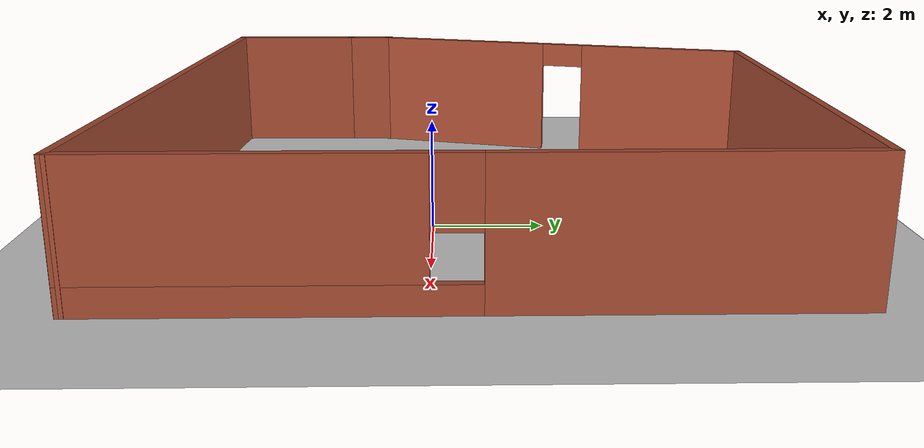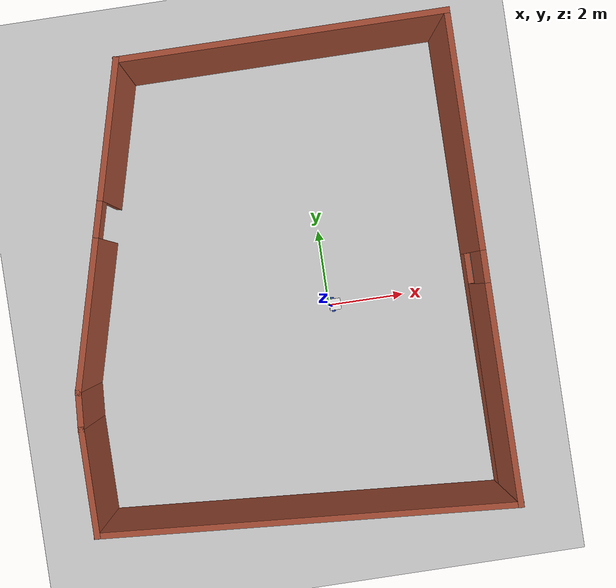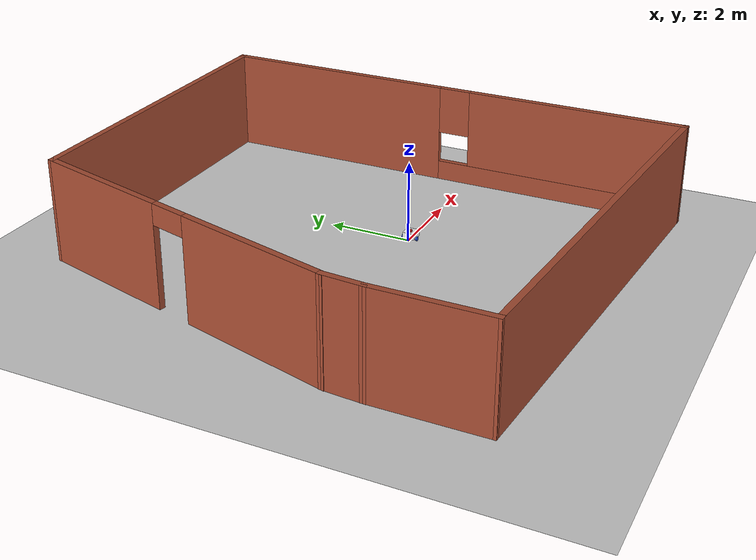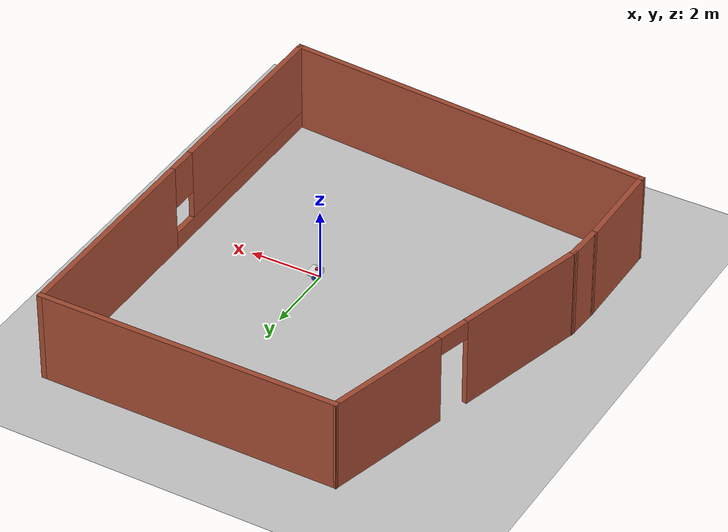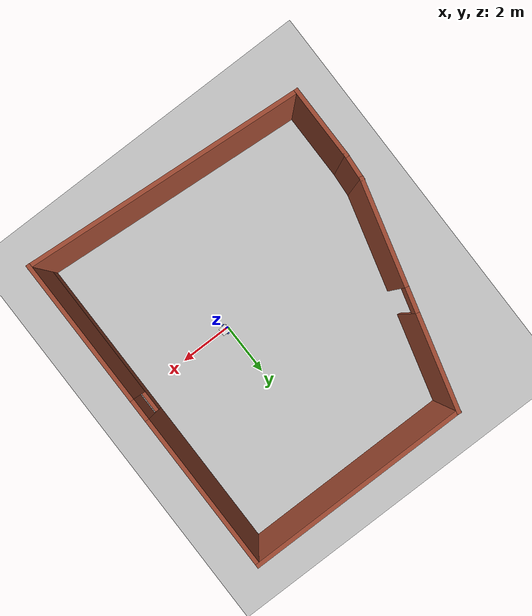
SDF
<sdf version="1.7">
 <world name="default">
  <light name="sun" type="directional">
   <pose>0 0 10 0 -0 0</pose>
   <diffuse>0.8 0.8 0.8 1</diffuse>
   <specular>0.2 0.2 0.2 1</specular>
   <attenuation>
    <range>1000</range>
    <constant>0.9</constant>
    <linear>0.01</linear>
    <quadratic>0.001</quadratic>
   </attenuation>
   <direction>-0.5 0.1 -0.9</direction>
   <spot><inner_angle>0</inner_angle><outer_angle>0</outer_angle><falloff>0</falloff></spot>
  </light>
  <model name="ground_plane">
   <static>1</static>
   <link name="link">
    <collision name="collision">
     <geometry><plane><normal>0 0 1</normal><size>100 100</size></plane></geometry>
     <surface>
      <contact><collide_bitmask>65535</collide_bitmask></contact>
      <friction><ode><mu>100</mu><mu2>50</mu2></ode></friction>
     </surface>
    </collision>
    <visual name="visual">
     <cast_shadows>0</cast_shadows>
     <geometry><plane><normal>0 0 1</normal><size>100 100</size></plane></geometry>
     <material>
      <script><uri>file://media/materials/scripts/gazebo.material</uri><name>Gazebo/Grey</name></script>
     </material>
    </visual>
   </link>
  </model>
  <gravity>0 0 -9.8</gravity>
  <magnetic_field>6e-06 2.3e-05 -4.2e-05</magnetic_field>
  <atmosphere type="adiabatic"/>
  <physics type="ode">
   <max_step_size>0.001</max_step_size>
   <real_time_factor>1</real_time_factor>
   <real_time_update_rate>1000</real_time_update_rate>
  </physics>
  <scene><ambient>0.4 0.4 0.4 1</ambient><background>0.7 0.7 0.7 1</background><shadows>1</shadows></scene>
  <spherical_coordinates>
   <surface_model>EARTH_WGS84</surface_model>
   <latitude_deg>0</latitude_deg>
   <longitude_deg>0</longitude_deg>
   <elevation>0</elevation>
   <heading_deg>0</heading_deg>
  </spherical_coordinates>
  <model name="my_bot">
   <link name="base_link">
    <inertial>
     <pose>0.055714 0 0.078571 0 -0 0</pose>
     <mass>0.7</mass>
     <inertia>
      <ixx>0.0064169</ixx>
      <ixy>0</ixy>
      <ixz>0.00118929</ixz>
      <iyy>0.00745405</iyy>
      <iyz>0</iyz>
      <izz>0.00876214</izz>
     </inertia>
    </inertial>
    <collision name="base_link_fixed_joint_lump__chassis_collision">
     <pose>0.05 0 0.075 0 -0 0</pose>
     <geometry><box><size>0.3 0.3 0.15</size></box></geometry>
    </collision>
    <collision name="base_link_fixed_joint_lump__caster_wheel_collision_1">
     <pose>0.14 0 0 0 -0 0</pose>
     <geometry><sphere><radius>0.05</radius></sphere></geometry>
     <surface><friction><ode><mu>0.001</mu><mu2>0.001</mu2></ode></friction></surface>
    </collision>
    <collision name="base_link_fixed_joint_lump__laser_frame_collision_2">
     <pose>0 0 0.175 0 -0 0</pose>
     <geometry><cylinder><length>0.04</length><radius>0.05</radius></cylinder></geometry>
    </collision>
    <visual name="base_link_fixed_joint_lump__chassis_visual">
     <pose>0.05 0 0.075 0 -0 0</pose>
     <geometry><box><size>0.3 0.3 0.15</size></box></geometry>
     <material>
      <script><name>Gazebo/White</name><uri>file://media/materials/scripts/gazebo.material</uri></script>
     </material>
    </visual>
    <visual name="base_link_fixed_joint_lump__camera_link_visual_1">
     <pose>0.205 0 0.08 0 -0 0</pose>
     <geometry><box><size>0.01 0.03 0.03</size></box></geometry>
     <material>
      <script><name>Gazebo/Red</name><uri>file://media/materials/scripts/gazebo.material</uri></script>
     </material>
    </visual>
    <visual name="base_link_fixed_joint_lump__caster_wheel_visual_2">
     <pose>0.14 0 0 0 -0 0</pose>
     <geometry><sphere><radius>0.05</radius></sphere></geometry>
     <material>
      <script><name>Gazebo/Black</name><uri>file://media/materials/scripts/gazebo.material</uri></script>
     </material>
    </visual>
    <visual name="base_link_fixed_joint_lump__laser_frame_visual_3">
     <pose>0 0 0.175 0 -0 0</pose>
     <geometry><cylinder><length>0.04</length><radius>0.05</radius></cylinder></geometry>
     <material>
      <script><name>Gazebo/Red</name><uri>file://media/materials/scripts/gazebo.material</uri></script>
     </material>
    </visual>
    <sensor name="camera" type="depth">
     <visualize>1</visualize>
     <update_rate>10</update_rate>
     <camera>
      <horizontal_fov>1.089</horizontal_fov>
      <image><format>B8G8R8</format><width>640</width><height>480</height></image>
      <clip><near>0.05</near><far>8</far></clip>
     </camera>
     <plugin name="camera_controller" filename="libgazebo_ros_camera.so">
      <frame_name>camera_link_optical</frame_name>
      <min_depth>0.1</min_depth>
      <max_depth>100.0</max_depth>
     </plugin>
     <pose>0.205 0 0.08 0 -0 0</pose>
    </sensor>
    <sensor name="laser" type="ray">
     <visualize>0</visualize>
     <update_rate>10</update_rate>
     <ray>
      <scan>
       <horizontal>
        <samples>360</samples>
        <min_angle>-3.14</min_angle>
        <max_angle>3.14</max_angle>
        <resolution>1</resolution>
       </horizontal>
       <vertical><samples>1</samples><min_angle>0</min_angle><max_angle>0</max_angle></vertical>
      </scan>
      <range><min>0.3</min><max>12</max></range>
     </ray>
     <plugin name="laser_controller" filename="libgazebo_ros_ray_sensor.so">
      <ros><argument>~/out:=scan</argument></ros>
      <output_type>sensor_msgs/LaserScan</output_type>
      <frame_name>laser_frame</frame_name>
     </plugin>
     <pose>0 0 0.175 0 -0 0</pose>
    </sensor>
   </link>
   <joint name="left_wheel_joint" type="revolute">
    <pose relative_to="base_link">0 0.175 0 -1.5708 0 0</pose>
    <parent>base_link</parent>
    <child>left_wheel</child>
    <axis>
     <xyz>0 0 1</xyz>
     <limit><lower>-1e+16</lower><upper>1e+16</upper></limit>
     <dynamics><spring_reference>0</spring_reference><spring_stiffness>0</spring_stiffness></dynamics>
    </axis>
   </joint>
   <link name="left_wheel">
    <pose relative_to="left_wheel_joint">0 0 0 0 -0 0</pose>
    <inertial>
     <mass>0.1</mass>
     <inertia>
      <ixx>8.33333e-05</ixx>
      <ixy>0</ixy>
      <ixz>0</ixz>
      <iyy>8.33333e-05</iyy>
      <iyz>0</iyz>
      <izz>0.000125</izz>
     </inertia>
    </inertial>
    <collision name="left_wheel_collision">
     <geometry><cylinder><length>0.04</length><radius>0.05</radius></cylinder></geometry>
    </collision>
    <visual name="left_wheel_visual">
     <geometry><cylinder><length>0.04</length><radius>0.05</radius></cylinder></geometry>
     <material>
      <script><name>Gazebo/Blue</name><uri>file://media/materials/scripts/gazebo.material</uri></script>
     </material>
    </visual>
   </link>
   <joint name="right_wheel_joint" type="revolute">
    <pose relative_to="base_link">0 -0.175 0 1.5708 -0 0</pose>
    <parent>base_link</parent>
    <child>right_wheel</child>
    <axis>
     <xyz>0 0 -1</xyz>
     <limit><lower>-1e+16</lower><upper>1e+16</upper></limit>
     <dynamics><spring_reference>0</spring_reference><spring_stiffness>0</spring_stiffness></dynamics>
    </axis>
   </joint>
   <link name="right_wheel">
    <pose relative_to="right_wheel_joint">0 0 0 0 -0 0</pose>
    <inertial>
     <mass>0.1</mass>
     <inertia>
      <ixx>8.33333e-05</ixx>
      <ixy>0</ixy>
      <ixz>0</ixz>
      <iyy>8.33333e-05</iyy>
      <iyz>0</iyz>
      <izz>0.000125</izz>
     </inertia>
    </inertial>
    <collision name="right_wheel_collision">
     <geometry><cylinder><length>0.04</length><radius>0.05</radius></cylinder></geometry>
    </collision>
    <visual name="right_wheel_visual">
     <geometry><cylinder><length>0.04</length><radius>0.05</radius></cylinder></geometry>
     <material>
      <script><name>Gazebo/Blue</name><uri>file://media/materials/scripts/gazebo.material</uri></script>
     </material>
    </visual>
   </link>
   <static>0</static>
   <plugin name="diff_drive" filename="libgazebo_ros_diff_drive.so">
    <left_joint>left_wheel_joint</left_joint>
    <right_joint>right_wheel_joint</right_joint>
    <wheel_separation>0.35</wheel_separation>
    <wheel_diameter>0.1</wheel_diameter>
    <max_wheel_torque>200</max_wheel_torque>
    <max_wheel_acceleration>10.0</max_wheel_acceleration>
    <odometry_frame>odom</odometry_frame>
    <robot_base_frame>base_link</robot_base_frame>
    <publish_odom>1</publish_odom>
    <publish_odom_tf>1</publish_odom_tf>
    <publish_wheel_tf>1</publish_wheel_tf>
   </plugin>
   <pose>0.100647 -8.1e-05 0.05 1e-06 8e-06 0.001065</pose>
  </model>
  <model name="my_building">
   <pose>-1.36106 0.647503 0 0 -0 0</pose>
   <link name="Wall_0">
    <collision name="Wall_0_Collision">
     <geometry><box><size>2.75 0.15 2.5</size></box></geometry>
     <pose>0 0 1.25 0 -0 0</pose>
    </collision>
    <visual name="Wall_0_Visual">
     <pose>0 0 1.25 0 -0 0</pose>
     <geometry><box><size>2.75 0.15 2.5</size></box></geometry>
     <material>
      <script><uri>file://media/materials/scripts/gazebo.material</uri><name>Gazebo/Bricks</name></script>
      <ambient>1 1 1 1</ambient>
     </material>
     <meta><layer>0</layer></meta>
    </visual>
    <pose>-5.12996 -3.98528 0 0 -0 -1.5708</pose>
   </link>
   <link name="Wall_2">
    <collision name="Wall_2_Collision">
     <geometry><box><size>1.05777 0.15 2.5</size></box></geometry>
     <pose>0 0 1.25 0 -0 0</pose>
    </collision>
    <visual name="Wall_2_Visual">
     <pose>0 0 1.25 0 -0 0</pose>
     <geometry><box><size>1.05777 0.15 2.5</size></box></geometry>
     <material>
      <script><uri>file://media/materials/scripts/gazebo.material</uri><name>Gazebo/Bricks</name></script>
      <ambient>1 1 1 1</ambient>
     </material>
     <meta><layer>0</layer></meta>
    </visual>
    <pose>-5.09822 -2.2325 0 0 -0 -1.64078</pose>
   </link>
   <link name="Wall_4">
    <pose>-4.01826 2.13227 0 0 -0 1.309</pose>
    <visual name="Wall_4_Visual_0">
     <pose>-2.20393 0 1.25 0 -0 0</pose>
     <geometry><box><size>3.84215 0.15 2.5</size></box></geometry>
     <material>
      <script><uri>file://media/materials/scripts/gazebo.material</uri><name>Gazebo/Bricks</name></script>
      <ambient>1 1 1 1</ambient>
     </material>
     <meta><layer>0</layer></meta>
    </visual>
    <collision name="Wall_4_Collision_0">
     <geometry><box><size>3.84215 0.15 2.5</size></box></geometry>
     <pose>-2.20393 0 1.25 0 -0 0</pose>
    </collision>
    <visual name="Wall_4_Visual_1">
     <pose>2.37107 0 1.25 0 -0 0</pose>
     <geometry><box><size>3.50785 0.15 2.5</size></box></geometry>
     <material>
      <script><uri>file://media/materials/scripts/gazebo.material</uri><name>Gazebo/Bricks</name></script>
      <ambient>1 1 1 1</ambient>
     </material>
     <meta><layer>0</layer></meta>
    </visual>
    <collision name="Wall_4_Collision_1">
     <geometry><box><size>3.50785 0.15 2.5</size></box></geometry>
     <pose>2.37107 0 1.25 0 -0 0</pose>
    </collision>
    <visual name="Wall_4_Visual_2">
     <pose>0.167148 0 2.25 0 -0 0</pose>
     <geometry><box><size>0.9 0.15 0.5</size></box></geometry>
     <material>
      <script><uri>file://media/materials/scripts/gazebo.material</uri><name>Gazebo/Bricks</name></script>
      <ambient>1 1 1 1</ambient>
     </material>
     <meta><layer>0</layer></meta>
    </visual>
    <collision name="Wall_4_Collision_2">
     <geometry><box><size>0.9 0.15 0.5</size></box></geometry>
     <pose>0.167148 0 2.25 0 -0 0</pose>
    </collision>
   </link>
   <link name="Wall_5">
    <collision name="Wall_5_Collision">
     <geometry><box><size>8.25 0.15 2.5</size></box></geometry>
     <pose>0 0 1.25 0 -0 0</pose>
    </collision>
    <visual name="Wall_5_Visual">
     <pose>0 0 1.25 0 -0 0</pose>
     <geometry><box><size>8.25 0.15 2.5</size></box></geometry>
     <material>
      <script><uri>file://media/materials/scripts/gazebo.material</uri><name>Gazebo/Bricks</name></script>
      <ambient>1 1 1 1</ambient>
     </material>
     <meta><layer>0</layer></meta>
    </visual>
    <pose>1.07996 6.04427 0 0 -0 0</pose>
   </link>
   <link name="Wall_6">
    <pose>5.12996 -0.005725 0 0 -0 -1.5708</pose>
    <visual name="Wall_6_Visual_0">
     <pose>-3.15038 0 1.25 0 -0 0</pose>
     <geometry><box><size>5.94924 0.15 2.5</size></box></geometry>
     <material>
      <script><uri>file://media/materials/scripts/gazebo.material</uri><name>Gazebo/Bricks</name></script>
      <ambient>1 1 1 1</ambient>
     </material>
     <meta><layer>0</layer></meta>
    </visual>
    <collision name="Wall_6_Collision_0">
     <geometry><box><size>5.94924 0.15 2.5</size></box></geometry>
     <pose>-3.15038 0 1.25 0 -0 0</pose>
    </collision>
    <visual name="Wall_6_Visual_1">
     <pose>2.97462 0 0.25 0 -0 0</pose>
     <geometry><box><size>6.30076 0.15 0.5</size></box></geometry>
     <material>
      <script><uri>file://media/materials/scripts/gazebo.material</uri><name>Gazebo/Bricks</name></script>
      <ambient>1 1 1 1</ambient>
     </material>
     <meta><layer>0</layer></meta>
    </visual>
    <collision name="Wall_6_Collision_1">
     <geometry><box><size>6.30076 0.15 0.5</size></box></geometry>
     <pose>2.97462 0 0.25 0 -0 0</pose>
    </collision>
    <visual name="Wall_6_Visual_2">
     <pose>3.37462 0 1.5 0 -0 0</pose>
     <geometry><box><size>5.50076 0.15 2</size></box></geometry>
     <material>
      <script><uri>file://media/materials/scripts/gazebo.material</uri><name>Gazebo/Bricks</name></script>
      <ambient>1 1 1 1</ambient>
     </material>
     <meta><layer>0</layer></meta>
    </visual>
    <collision name="Wall_6_Collision_2">
     <geometry><box><size>5.50076 0.15 2</size></box></geometry>
     <pose>3.37462 0 1.5 0 -0 0</pose>
    </collision>
    <visual name="Wall_6_Visual_3">
     <pose>0.22424 0 1.9 0 -0 0</pose>
     <geometry><box><size>0.8 0.15 1.2</size></box></geometry>
     <material>
      <script><uri>file://media/materials/scripts/gazebo.material</uri><name>Gazebo/Bricks</name></script>
      <ambient>1 1 1 1</ambient>
     </material>
     <meta><layer>0</layer></meta>
    </visual>
    <collision name="Wall_6_Collision_3">
     <geometry><box><size>0.8 0.15 1.2</size></box></geometry>
     <pose>0.22424 0 1.9 0 -0 0</pose>
    </collision>
   </link>
   <link name="Wall_7">
    <collision name="Wall_7_Collision">
     <geometry><box><size>10.4388 0.15 2.5</size></box></geometry>
     <pose>0 0 1.25 0 -0 0</pose>
    </collision>
    <visual name="Wall_7_Visual">
     <pose>0 0 1.25 0 -0 0</pose>
     <geometry><box><size>10.4388 0.15 2.5</size></box></geometry>
     <material>
      <script><uri>file://media/materials/scripts/gazebo.material</uri><name>Gazebo/Bricks</name></script>
      <ambient>1 1 1 1</ambient>
     </material>
     <meta><layer>0</layer></meta>
    </visual>
    <pose>0 -5.6705 0 0 -0 3.06664</pose>
   </link>
   <static>1</static>
  </model>
 </world>
</sdf>
